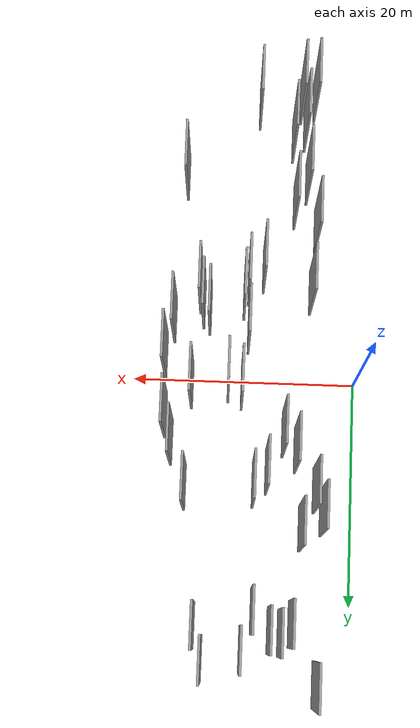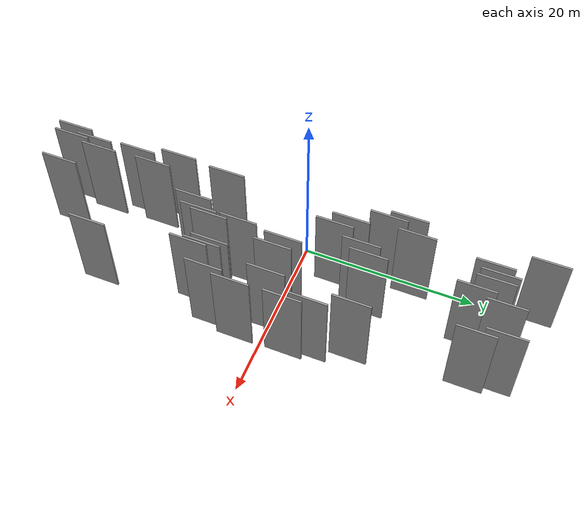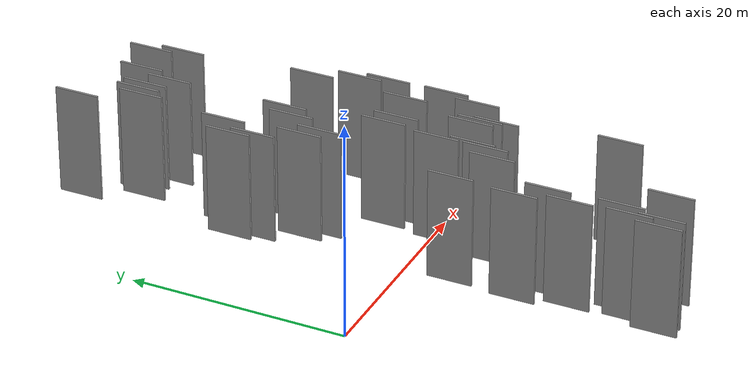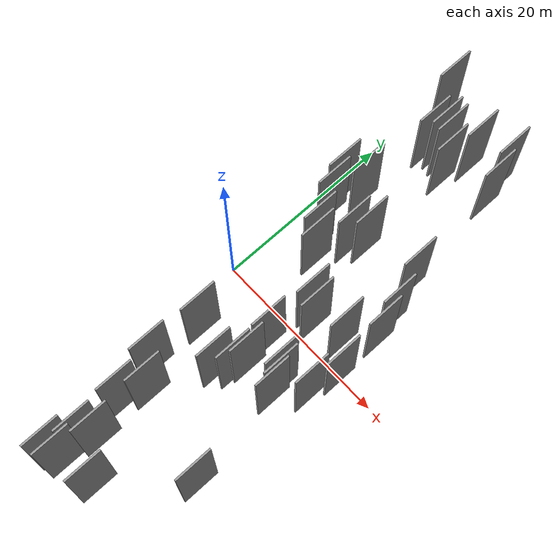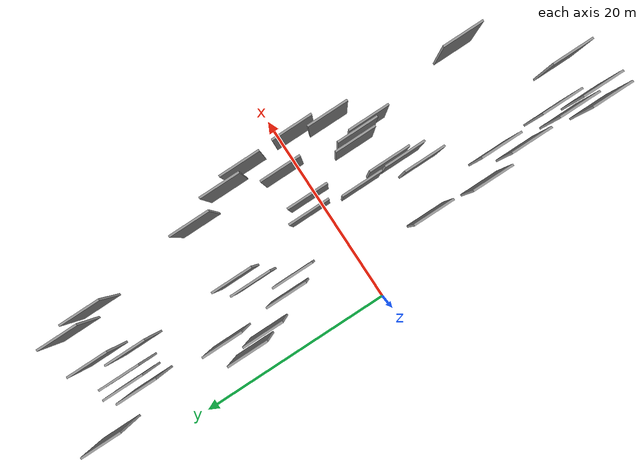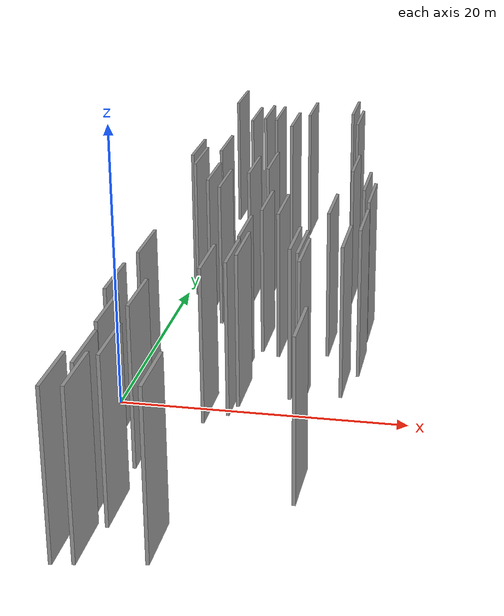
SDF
<sdf version="1.6">
 <world name="default">
  <scene>
   <sky><clouds><speed>12</speed></clouds></sky>
   <ambient>0.4 0.4 0.4 1</ambient>
   <background>0.7 0.7 0.7 1</background>
   <shadows>1</shadows>
  </scene>
  <gravity>0 0 -9.8066</gravity>
  <magnetic_field>6e-06 2.3e-05 -4.2e-05</magnetic_field>
  <physics default="0" name="default_physics" type="ode">
   <ode>
    <solver>
     <type>quick</type>
     <iters>10</iters>
     <sor>1.0</sor>
     <use_dynamic_moi_rescaling>0</use_dynamic_moi_rescaling>
    </solver>
    <constraints>
     <cfm>0</cfm>
     <erp>0.2</erp>
     <contact_max_correcting_vel>100</contact_max_correcting_vel>
     <contact_surface_layer>0.001</contact_surface_layer>
    </constraints>
   </ode>
   <max_step_size>0.004</max_step_size>
   <real_time_factor>1</real_time_factor>
   <real_time_update_rate>250</real_time_update_rate>
  </physics>
  <light name="sun" type="directional">
   <pose>0 0 10 0 0 0</pose>
   <diffuse>0.8 0.8 0.8 1</diffuse>
   <specular>0.2 0.2 0.2 1</specular>
   <attenuation>
    <range>1000</range>
    <constant>0.9</constant>
    <linear>0.01</linear>
    <quadratic>0.001</quadratic>
   </attenuation>
   <direction>-0.5 0.1 -0.9</direction>
  </light>
  <model name="grey_wall_1">
   <static>1</static>
   <pose>3.3605 26.6295 5.0 0.000000 0.000000 1.570796</pose>
   <link name="link">
    <pose>0 0 5.00 0 0 0</pose>
    <collision name="collision"><geometry><box><size>4.00 0.2 10.00</size></box></geometry></collision>
    <visual name="visual">
     <cast_shadows>0</cast_shadows>
     <geometry><box><size>4.00 0.2 10.00</size></box></geometry>
     <material>
      <script>
       <uri>model://grey_wall/materials/scripts</uri>
       <uri>model://grey_wall/materials/textures</uri>
       <name>vrc/grey_wall</name>
      </script>
     </material>
    </visual>
   </link>
  </model>
  <model name="grey_wall_2">
   <static>1</static>
   <pose>6.3932 22.4567 5.0 0.000000 0.000000 1.570796</pose>
   <link name="link">
    <pose>0 0 5.00 0 0 0</pose>
    <collision name="collision"><geometry><box><size>4.00 0.2 10.00</size></box></geometry></collision>
    <visual name="visual">
     <cast_shadows>0</cast_shadows>
     <geometry><box><size>4.00 0.2 10.00</size></box></geometry>
     <material>
      <script>
       <uri>model://grey_wall/materials/scripts</uri>
       <uri>model://grey_wall/materials/textures</uri>
       <name>vrc/grey_wall</name>
      </script>
     </material>
    </visual>
   </link>
  </model>
  <model name="grey_wall_3">
   <static>1</static>
   <pose>9.2774 -24.4835 5.0 0.000000 0.000000 1.570796</pose>
   <link name="link">
    <pose>0 0 5.00 0 0 0</pose>
    <collision name="collision"><geometry><box><size>4.00 0.2 10.00</size></box></geometry></collision>
    <visual name="visual">
     <cast_shadows>0</cast_shadows>
     <geometry><box><size>4.00 0.2 10.00</size></box></geometry>
     <material>
      <script>
       <uri>model://grey_wall/materials/scripts</uri>
       <uri>model://grey_wall/materials/textures</uri>
       <name>vrc/grey_wall</name>
      </script>
     </material>
    </visual>
   </link>
  </model>
  <model name="grey_wall_4">
   <static>1</static>
   <pose>4.3896 -7.3641 5.0 0.000000 0.000000 1.570796</pose>
   <link name="link">
    <pose>0 0 5.00 0 0 0</pose>
    <collision name="collision"><geometry><box><size>4.00 0.2 10.00</size></box></geometry></collision>
    <visual name="visual">
     <cast_shadows>0</cast_shadows>
     <geometry><box><size>4.00 0.2 10.00</size></box></geometry>
     <material>
      <script>
       <uri>model://grey_wall/materials/scripts</uri>
       <uri>model://grey_wall/materials/textures</uri>
       <name>vrc/grey_wall</name>
      </script>
     </material>
    </visual>
   </link>
  </model>
  <model name="grey_wall_5">
   <static>1</static>
   <pose>10.1894 -6.7160 5.0 0.000000 0.000000 1.570796</pose>
   <link name="link">
    <pose>0 0 5.00 0 0 0</pose>
    <collision name="collision"><geometry><box><size>4.00 0.2 10.00</size></box></geometry></collision>
    <visual name="visual">
     <cast_shadows>0</cast_shadows>
     <geometry><box><size>4.00 0.2 10.00</size></box></geometry>
     <material>
      <script>
       <uri>model://grey_wall/materials/scripts</uri>
       <uri>model://grey_wall/materials/textures</uri>
       <name>vrc/grey_wall</name>
      </script>
     </material>
    </visual>
   </link>
  </model>
  <model name="grey_wall_6">
   <static>1</static>
   <pose>3.0238 12.1843 5.0 0.000000 0.000000 1.570796</pose>
   <link name="link">
    <pose>0 0 5.00 0 0 0</pose>
    <collision name="collision"><geometry><box><size>4.00 0.2 10.00</size></box></geometry></collision>
    <visual name="visual">
     <cast_shadows>0</cast_shadows>
     <geometry><box><size>4.00 0.2 10.00</size></box></geometry>
     <material>
      <script>
       <uri>model://grey_wall/materials/scripts</uri>
       <uri>model://grey_wall/materials/textures</uri>
       <name>vrc/grey_wall</name>
      </script>
     </material>
    </visual>
   </link>
  </model>
  <model name="grey_wall_7">
   <static>1</static>
   <pose>7.8311 8.7577 5.0 0.000000 0.000000 1.570796</pose>
   <link name="link">
    <pose>0 0 5.00 0 0 0</pose>
    <collision name="collision"><geometry><box><size>4.00 0.2 10.00</size></box></geometry></collision>
    <visual name="visual">
     <cast_shadows>0</cast_shadows>
     <geometry><box><size>4.00 0.2 10.00</size></box></geometry>
     <material>
      <script>
       <uri>model://grey_wall/materials/scripts</uri>
       <uri>model://grey_wall/materials/textures</uri>
       <name>vrc/grey_wall</name>
      </script>
     </material>
    </visual>
   </link>
  </model>
  <model name="grey_wall_8">
   <static>1</static>
   <pose>5.3707 6.7844 5.0 0.000000 0.000000 1.570796</pose>
   <link name="link">
    <pose>0 0 5.00 0 0 0</pose>
    <collision name="collision"><geometry><box><size>4.00 0.2 10.00</size></box></geometry></collision>
    <visual name="visual">
     <cast_shadows>0</cast_shadows>
     <geometry><box><size>4.00 0.2 10.00</size></box></geometry>
     <material>
      <script>
       <uri>model://grey_wall/materials/scripts</uri>
       <uri>model://grey_wall/materials/textures</uri>
       <name>vrc/grey_wall</name>
      </script>
     </material>
    </visual>
   </link>
  </model>
  <model name="grey_wall_9">
   <static>1</static>
   <pose>8.9446 9.9167 5.0 0.000000 0.000000 1.570796</pose>
   <link name="link">
    <pose>0 0 5.00 0 0 0</pose>
    <collision name="collision"><geometry><box><size>4.00 0.2 10.00</size></box></geometry></collision>
    <visual name="visual">
     <cast_shadows>0</cast_shadows>
     <geometry><box><size>4.00 0.2 10.00</size></box></geometry>
     <material>
      <script>
       <uri>model://grey_wall/materials/scripts</uri>
       <uri>model://grey_wall/materials/textures</uri>
       <name>vrc/grey_wall</name>
      </script>
     </material>
    </visual>
   </link>
  </model>
  <model name="grey_wall_10">
   <static>1</static>
   <pose>5.5033 21.6975 5.0 0.000000 0.000000 1.570796</pose>
   <link name="link">
    <pose>0 0 5.00 0 0 0</pose>
    <collision name="collision"><geometry><box><size>4.00 0.2 10.00</size></box></geometry></collision>
    <visual name="visual">
     <cast_shadows>0</cast_shadows>
     <geometry><box><size>4.00 0.2 10.00</size></box></geometry>
     <material>
      <script>
       <uri>model://grey_wall/materials/scripts</uri>
       <uri>model://grey_wall/materials/textures</uri>
       <name>vrc/grey_wall</name>
      </script>
     </material>
    </visual>
   </link>
  </model>
  <model name="grey_wall_11">
   <static>1</static>
   <pose>5.2391 -22.5206 5.0 0.000000 0.000000 1.570796</pose>
   <link name="link">
    <pose>0 0 5.00 0 0 0</pose>
    <collision name="collision"><geometry><box><size>4.00 0.2 10.00</size></box></geometry></collision>
    <visual name="visual">
     <cast_shadows>0</cast_shadows>
     <geometry><box><size>4.00 0.2 10.00</size></box></geometry>
     <material>
      <script>
       <uri>model://grey_wall/materials/scripts</uri>
       <uri>model://grey_wall/materials/textures</uri>
       <name>vrc/grey_wall</name>
      </script>
     </material>
    </visual>
   </link>
  </model>
  <model name="grey_wall_12">
   <static>1</static>
   <pose>13.6601 22.0683 5.0 0.000000 0.000000 1.570796</pose>
   <link name="link">
    <pose>0 0 5.00 0 0 0</pose>
    <collision name="collision"><geometry><box><size>4.00 0.2 10.00</size></box></geometry></collision>
    <visual name="visual">
     <cast_shadows>0</cast_shadows>
     <geometry><box><size>4.00 0.2 10.00</size></box></geometry>
     <material>
      <script>
       <uri>model://grey_wall/materials/scripts</uri>
       <uri>model://grey_wall/materials/textures</uri>
       <name>vrc/grey_wall</name>
      </script>
     </material>
    </visual>
   </link>
  </model>
  <model name="grey_wall_13">
   <static>1</static>
   <pose>6.4682 5.4451 5.0 0.000000 0.000000 1.570796</pose>
   <link name="link">
    <pose>0 0 5.00 0 0 0</pose>
    <collision name="collision"><geometry><box><size>4.00 0.2 10.00</size></box></geometry></collision>
    <visual name="visual">
     <cast_shadows>0</cast_shadows>
     <geometry><box><size>4.00 0.2 10.00</size></box></geometry>
     <material>
      <script>
       <uri>model://grey_wall/materials/scripts</uri>
       <uri>model://grey_wall/materials/textures</uri>
       <name>vrc/grey_wall</name>
      </script>
     </material>
    </visual>
   </link>
  </model>
  <model name="grey_wall_14">
   <static>1</static>
   <pose>4.0726 -13.0733 5.0 0.000000 0.000000 1.570796</pose>
   <link name="link">
    <pose>0 0 5.00 0 0 0</pose>
    <collision name="collision"><geometry><box><size>4.00 0.2 10.00</size></box></geometry></collision>
    <visual name="visual">
     <cast_shadows>0</cast_shadows>
     <geometry><box><size>4.00 0.2 10.00</size></box></geometry>
     <material>
      <script>
       <uri>model://grey_wall/materials/scripts</uri>
       <uri>model://grey_wall/materials/textures</uri>
       <name>vrc/grey_wall</name>
      </script>
     </material>
    </visual>
   </link>
  </model>
  <model name="grey_wall_15">
   <static>1</static>
   <pose>14.8486 10.3072 5.0 0.000000 0.000000 1.570796</pose>
   <link name="link">
    <pose>0 0 5.00 0 0 0</pose>
    <collision name="collision"><geometry><box><size>4.00 0.2 10.00</size></box></geometry></collision>
    <visual name="visual">
     <cast_shadows>0</cast_shadows>
     <geometry><box><size>4.00 0.2 10.00</size></box></geometry>
     <material>
      <script>
       <uri>model://grey_wall/materials/scripts</uri>
       <uri>model://grey_wall/materials/textures</uri>
       <name>vrc/grey_wall</name>
      </script>
     </material>
    </visual>
   </link>
  </model>
  <model name="grey_wall_16">
   <static>1</static>
   <pose>9.8239 -8.0201 5.0 0.000000 0.000000 1.570796</pose>
   <link name="link">
    <pose>0 0 5.00 0 0 0</pose>
    <collision name="collision"><geometry><box><size>4.00 0.2 10.00</size></box></geometry></collision>
    <visual name="visual">
     <cast_shadows>0</cast_shadows>
     <geometry><box><size>4.00 0.2 10.00</size></box></geometry>
     <material>
      <script>
       <uri>model://grey_wall/materials/scripts</uri>
       <uri>model://grey_wall/materials/textures</uri>
       <name>vrc/grey_wall</name>
      </script>
     </material>
    </visual>
   </link>
  </model>
  <model name="grey_wall_17">
   <static>1</static>
   <pose>5.9867 -15.1851 5.0 0.000000 0.000000 1.570796</pose>
   <link name="link">
    <pose>0 0 5.00 0 0 0</pose>
    <collision name="collision"><geometry><box><size>4.00 0.2 10.00</size></box></geometry></collision>
    <visual name="visual">
     <cast_shadows>0</cast_shadows>
     <geometry><box><size>4.00 0.2 10.00</size></box></geometry>
     <material>
      <script>
       <uri>model://grey_wall/materials/scripts</uri>
       <uri>model://grey_wall/materials/textures</uri>
       <name>vrc/grey_wall</name>
      </script>
     </material>
    </visual>
   </link>
  </model>
  <model name="grey_wall_18">
   <static>1</static>
   <pose>13.7069 -5.8160 5.0 0.000000 0.000000 1.570796</pose>
   <link name="link">
    <pose>0 0 5.00 0 0 0</pose>
    <collision name="collision"><geometry><box><size>4.00 0.2 10.00</size></box></geometry></collision>
    <visual name="visual">
     <cast_shadows>0</cast_shadows>
     <geometry><box><size>4.00 0.2 10.00</size></box></geometry>
     <material>
      <script>
       <uri>model://grey_wall/materials/scripts</uri>
       <uri>model://grey_wall/materials/textures</uri>
       <name>vrc/grey_wall</name>
      </script>
     </material>
    </visual>
   </link>
  </model>
  <model name="grey_wall_19">
   <static>1</static>
   <pose>14.5172 1.4016 5.0 0.000000 0.000000 1.570796</pose>
   <link name="link">
    <pose>0 0 5.00 0 0 0</pose>
    <collision name="collision"><geometry><box><size>4.00 0.2 10.00</size></box></geometry></collision>
    <visual name="visual">
     <cast_shadows>0</cast_shadows>
     <geometry><box><size>4.00 0.2 10.00</size></box></geometry>
     <material>
      <script>
       <uri>model://grey_wall/materials/scripts</uri>
       <uri>model://grey_wall/materials/textures</uri>
       <name>vrc/grey_wall</name>
      </script>
     </material>
    </visual>
   </link>
  </model>
  <model name="grey_wall_20">
   <static>1</static>
   <pose>4.4383 -25.2906 5.0 0.000000 0.000000 1.570796</pose>
   <link name="link">
    <pose>0 0 5.00 0 0 0</pose>
    <collision name="collision"><geometry><box><size>4.00 0.2 10.00</size></box></geometry></collision>
    <visual name="visual">
     <cast_shadows>0</cast_shadows>
     <geometry><box><size>4.00 0.2 10.00</size></box></geometry>
     <material>
      <script>
       <uri>model://grey_wall/materials/scripts</uri>
       <uri>model://grey_wall/materials/textures</uri>
       <name>vrc/grey_wall</name>
      </script>
     </material>
    </visual>
   </link>
  </model>
  <model name="grey_wall_21">
   <static>1</static>
   <pose>16.1443 6.4252 5.0 0.000000 0.000000 1.570796</pose>
   <link name="link">
    <pose>0 0 5.00 0 0 0</pose>
    <collision name="collision"><geometry><box><size>4.00 0.2 10.00</size></box></geometry></collision>
    <visual name="visual">
     <cast_shadows>0</cast_shadows>
     <geometry><box><size>4.00 0.2 10.00</size></box></geometry>
     <material>
      <script>
       <uri>model://grey_wall/materials/scripts</uri>
       <uri>model://grey_wall/materials/textures</uri>
       <name>vrc/grey_wall</name>
      </script>
     </material>
    </visual>
   </link>
  </model>
  <model name="grey_wall_22">
   <static>1</static>
   <pose>16.8866 -1.3004 5.0 0.000000 0.000000 1.570796</pose>
   <link name="link">
    <pose>0 0 5.00 0 0 0</pose>
    <collision name="collision"><geometry><box><size>4.00 0.2 10.00</size></box></geometry></collision>
    <visual name="visual">
     <cast_shadows>0</cast_shadows>
     <geometry><box><size>4.00 0.2 10.00</size></box></geometry>
     <material>
      <script>
       <uri>model://grey_wall/materials/scripts</uri>
       <uri>model://grey_wall/materials/textures</uri>
       <name>vrc/grey_wall</name>
      </script>
     </material>
    </visual>
   </link>
  </model>
  <model name="grey_wall_23">
   <static>1</static>
   <pose>16.7572 4.0357 5.0 0.000000 0.000000 1.570796</pose>
   <link name="link">
    <pose>0 0 5.00 0 0 0</pose>
    <collision name="collision"><geometry><box><size>4.00 0.2 10.00</size></box></geometry></collision>
    <visual name="visual">
     <cast_shadows>0</cast_shadows>
     <geometry><box><size>4.00 0.2 10.00</size></box></geometry>
     <material>
      <script>
       <uri>model://grey_wall/materials/scripts</uri>
       <uri>model://grey_wall/materials/textures</uri>
       <name>vrc/grey_wall</name>
      </script>
     </material>
    </visual>
   </link>
  </model>
  <model name="grey_wall_24">
   <static>1</static>
   <pose>6.2550 -21.4470 5.0 0.000000 0.000000 1.570796</pose>
   <link name="link">
    <pose>0 0 5.00 0 0 0</pose>
    <collision name="collision"><geometry><box><size>4.00 0.2 10.00</size></box></geometry></collision>
    <visual name="visual">
     <cast_shadows>0</cast_shadows>
     <geometry><box><size>4.00 0.2 10.00</size></box></geometry>
     <material>
      <script>
       <uri>model://grey_wall/materials/scripts</uri>
       <uri>model://grey_wall/materials/textures</uri>
       <name>vrc/grey_wall</name>
      </script>
     </material>
    </visual>
   </link>
  </model>
  <model name="grey_wall_25">
   <static>1</static>
   <pose>4.8253 13.5421 5.0 0.000000 0.000000 1.570796</pose>
   <link name="link">
    <pose>0 0 5.00 0 0 0</pose>
    <collision name="collision"><geometry><box><size>4.00 0.2 10.00</size></box></geometry></collision>
    <visual name="visual">
     <cast_shadows>0</cast_shadows>
     <geometry><box><size>4.00 0.2 10.00</size></box></geometry>
     <material>
      <script>
       <uri>model://grey_wall/materials/scripts</uri>
       <uri>model://grey_wall/materials/textures</uri>
       <name>vrc/grey_wall</name>
      </script>
     </material>
    </visual>
   </link>
  </model>
  <model name="grey_wall_26">
   <static>1</static>
   <pose>4.9364 -17.5195 5.0 0.000000 0.000000 1.570796</pose>
   <link name="link">
    <pose>0 0 5.00 0 0 0</pose>
    <collision name="collision"><geometry><box><size>4.00 0.2 10.00</size></box></geometry></collision>
    <visual name="visual">
     <cast_shadows>0</cast_shadows>
     <geometry><box><size>4.00 0.2 10.00</size></box></geometry>
     <material>
      <script>
       <uri>model://grey_wall/materials/scripts</uri>
       <uri>model://grey_wall/materials/textures</uri>
       <name>vrc/grey_wall</name>
      </script>
     </material>
    </visual>
   </link>
  </model>
  <model name="grey_wall_27">
   <static>1</static>
   <pose>8.5507 -9.1843 5.0 0.000000 0.000000 1.570796</pose>
   <link name="link">
    <pose>0 0 5.00 0 0 0</pose>
    <collision name="collision"><geometry><box><size>4.00 0.2 10.00</size></box></geometry></collision>
    <visual name="visual">
     <cast_shadows>0</cast_shadows>
     <geometry><box><size>4.00 0.2 10.00</size></box></geometry>
     <material>
      <script>
       <uri>model://grey_wall/materials/scripts</uri>
       <uri>model://grey_wall/materials/textures</uri>
       <name>vrc/grey_wall</name>
      </script>
     </material>
    </visual>
   </link>
  </model>
  <model name="grey_wall_28">
   <static>1</static>
   <pose>14.0276 -7.1479 5.0 0.000000 0.000000 1.570796</pose>
   <link name="link">
    <pose>0 0 5.00 0 0 0</pose>
    <collision name="collision"><geometry><box><size>4.00 0.2 10.00</size></box></geometry></collision>
    <visual name="visual">
     <cast_shadows>0</cast_shadows>
     <geometry><box><size>4.00 0.2 10.00</size></box></geometry>
     <material>
      <script>
       <uri>model://grey_wall/materials/scripts</uri>
       <uri>model://grey_wall/materials/textures</uri>
       <name>vrc/grey_wall</name>
      </script>
     </material>
    </visual>
   </link>
  </model>
  <model name="grey_wall_29">
   <static>1</static>
   <pose>7.2924 22.2677 5.0 0.000000 0.000000 1.570796</pose>
   <link name="link">
    <pose>0 0 5.00 0 0 0</pose>
    <collision name="collision"><geometry><box><size>4.00 0.2 10.00</size></box></geometry></collision>
    <visual name="visual">
     <cast_shadows>0</cast_shadows>
     <geometry><box><size>4.00 0.2 10.00</size></box></geometry>
     <material>
      <script>
       <uri>model://grey_wall/materials/scripts</uri>
       <uri>model://grey_wall/materials/textures</uri>
       <name>vrc/grey_wall</name>
      </script>
     </material>
    </visual>
   </link>
  </model>
  <model name="grey_wall_30">
   <static>1</static>
   <pose>13.1415 -5.2246 5.0 0.000000 0.000000 1.570796</pose>
   <link name="link">
    <pose>0 0 5.00 0 0 0</pose>
    <collision name="collision"><geometry><box><size>4.00 0.2 10.00</size></box></geometry></collision>
    <visual name="visual">
     <cast_shadows>0</cast_shadows>
     <geometry><box><size>4.00 0.2 10.00</size></box></geometry>
     <material>
      <script>
       <uri>model://grey_wall/materials/scripts</uri>
       <uri>model://grey_wall/materials/textures</uri>
       <name>vrc/grey_wall</name>
      </script>
     </material>
    </visual>
   </link>
  </model>
  <model name="grey_wall_31">
   <static>1</static>
   <pose>5.6091 -25.1113 5.0 0.000000 0.000000 1.570796</pose>
   <link name="link">
    <pose>0 0 5.00 0 0 0</pose>
    <collision name="collision"><geometry><box><size>4.00 0.2 10.00</size></box></geometry></collision>
    <visual name="visual">
     <cast_shadows>0</cast_shadows>
     <geometry><box><size>4.00 0.2 10.00</size></box></geometry>
     <material>
      <script>
       <uri>model://grey_wall/materials/scripts</uri>
       <uri>model://grey_wall/materials/textures</uri>
       <name>vrc/grey_wall</name>
      </script>
     </material>
    </visual>
   </link>
  </model>
  <model name="grey_wall_32">
   <static>1</static>
   <pose>16.2155 -4.4453 5.0 0.000000 0.000000 1.570796</pose>
   <link name="link">
    <pose>0 0 5.00 0 0 0</pose>
    <collision name="collision"><geometry><box><size>4.00 0.2 10.00</size></box></geometry></collision>
    <visual name="visual">
     <cast_shadows>0</cast_shadows>
     <geometry><box><size>4.00 0.2 10.00</size></box></geometry>
     <material>
      <script>
       <uri>model://grey_wall/materials/scripts</uri>
       <uri>model://grey_wall/materials/textures</uri>
       <name>vrc/grey_wall</name>
      </script>
     </material>
    </visual>
   </link>
  </model>
  <model name="grey_wall_33">
   <static>1</static>
   <pose>11.3460 0.7585 5.0 0.000000 0.000000 1.570796</pose>
   <link name="link">
    <pose>0 0 5.00 0 0 0</pose>
    <collision name="collision"><geometry><box><size>4.00 0.2 10.00</size></box></geometry></collision>
    <visual name="visual">
     <cast_shadows>0</cast_shadows>
     <geometry><box><size>4.00 0.2 10.00</size></box></geometry>
     <material>
      <script>
       <uri>model://grey_wall/materials/scripts</uri>
       <uri>model://grey_wall/materials/textures</uri>
       <name>vrc/grey_wall</name>
      </script>
     </material>
    </visual>
   </link>
  </model>
  <model name="grey_wall_34">
   <static>1</static>
   <pose>15.5416 -17.5934 5.0 0.000000 0.000000 1.570796</pose>
   <link name="link">
    <pose>0 0 5.00 0 0 0</pose>
    <collision name="collision"><geometry><box><size>4.00 0.2 10.00</size></box></geometry></collision>
    <visual name="visual">
     <cast_shadows>0</cast_shadows>
     <geometry><box><size>4.00 0.2 10.00</size></box></geometry>
     <material>
      <script>
       <uri>model://grey_wall/materials/scripts</uri>
       <uri>model://grey_wall/materials/textures</uri>
       <name>vrc/grey_wall</name>
      </script>
     </material>
    </visual>
   </link>
  </model>
  <model name="grey_wall_35">
   <static>1</static>
   <pose>3.6669 10.2323 5.0 0.000000 0.000000 1.570796</pose>
   <link name="link">
    <pose>0 0 5.00 0 0 0</pose>
    <collision name="collision"><geometry><box><size>4.00 0.2 10.00</size></box></geometry></collision>
    <visual name="visual">
     <cast_shadows>0</cast_shadows>
     <geometry><box><size>4.00 0.2 10.00</size></box></geometry>
     <material>
      <script>
       <uri>model://grey_wall/materials/scripts</uri>
       <uri>model://grey_wall/materials/textures</uri>
       <name>vrc/grey_wall</name>
      </script>
     </material>
    </visual>
   </link>
  </model>
  <model name="grey_wall_36">
   <static>1</static>
   <pose>9.6571 23.9128 5.0 0.000000 0.000000 1.570796</pose>
   <link name="link">
    <pose>0 0 5.00 0 0 0</pose>
    <collision name="collision"><geometry><box><size>4.00 0.2 10.00</size></box></geometry></collision>
    <visual name="visual">
     <cast_shadows>0</cast_shadows>
     <geometry><box><size>4.00 0.2 10.00</size></box></geometry>
     <material>
      <script>
       <uri>model://grey_wall/materials/scripts</uri>
       <uri>model://grey_wall/materials/textures</uri>
       <name>vrc/grey_wall</name>
      </script>
     </material>
    </visual>
   </link>
  </model>
  <model name="grey_wall_37">
   <static>1</static>
   <pose>8.7591 20.7203 5.0 0.000000 0.000000 1.570796</pose>
   <link name="link">
    <pose>0 0 5.00 0 0 0</pose>
    <collision name="collision"><geometry><box><size>4.00 0.2 10.00</size></box></geometry></collision>
    <visual name="visual">
     <cast_shadows>0</cast_shadows>
     <geometry><box><size>4.00 0.2 10.00</size></box></geometry>
     <material>
      <script>
       <uri>model://grey_wall/materials/scripts</uri>
       <uri>model://grey_wall/materials/textures</uri>
       <name>vrc/grey_wall</name>
      </script>
     </material>
    </visual>
   </link>
  </model>
  <model name="grey_wall_38">
   <static>1</static>
   <pose>12.9400 24.7725 5.0 0.000000 0.000000 1.570796</pose>
   <link name="link">
    <pose>0 0 5.00 0 0 0</pose>
    <collision name="collision"><geometry><box><size>4.00 0.2 10.00</size></box></geometry></collision>
    <visual name="visual">
     <cast_shadows>0</cast_shadows>
     <geometry><box><size>4.00 0.2 10.00</size></box></geometry>
     <material>
      <script>
       <uri>model://grey_wall/materials/scripts</uri>
       <uri>model://grey_wall/materials/textures</uri>
       <name>vrc/grey_wall</name>
      </script>
     </material>
    </visual>
   </link>
  </model>
  <model name="grey_wall_39">
   <static>1</static>
   <pose>9.7224 -3.6618 5.0 0.000000 0.000000 1.570796</pose>
   <link name="link">
    <pose>0 0 5.00 0 0 0</pose>
    <collision name="collision"><geometry><box><size>4.00 0.2 10.00</size></box></geometry></collision>
    <visual name="visual">
     <cast_shadows>0</cast_shadows>
     <geometry><box><size>4.00 0.2 10.00</size></box></geometry>
     <material>
      <script>
       <uri>model://grey_wall/materials/scripts</uri>
       <uri>model://grey_wall/materials/textures</uri>
       <name>vrc/grey_wall</name>
      </script>
     </material>
    </visual>
   </link>
  </model>
  <model name="grey_wall_40">
   <static>1</static>
   <pose>10.1690 1.3714 5.0 0.000000 0.000000 1.570796</pose>
   <link name="link">
    <pose>0 0 5.00 0 0 0</pose>
    <collision name="collision"><geometry><box><size>4.00 0.2 10.00</size></box></geometry></collision>
    <visual name="visual">
     <cast_shadows>0</cast_shadows>
     <geometry><box><size>4.00 0.2 10.00</size></box></geometry>
     <material>
      <script>
       <uri>model://grey_wall/materials/scripts</uri>
       <uri>model://grey_wall/materials/textures</uri>
       <name>vrc/grey_wall</name>
      </script>
     </material>
    </visual>
   </link>
  </model>
 </world>
</sdf>
